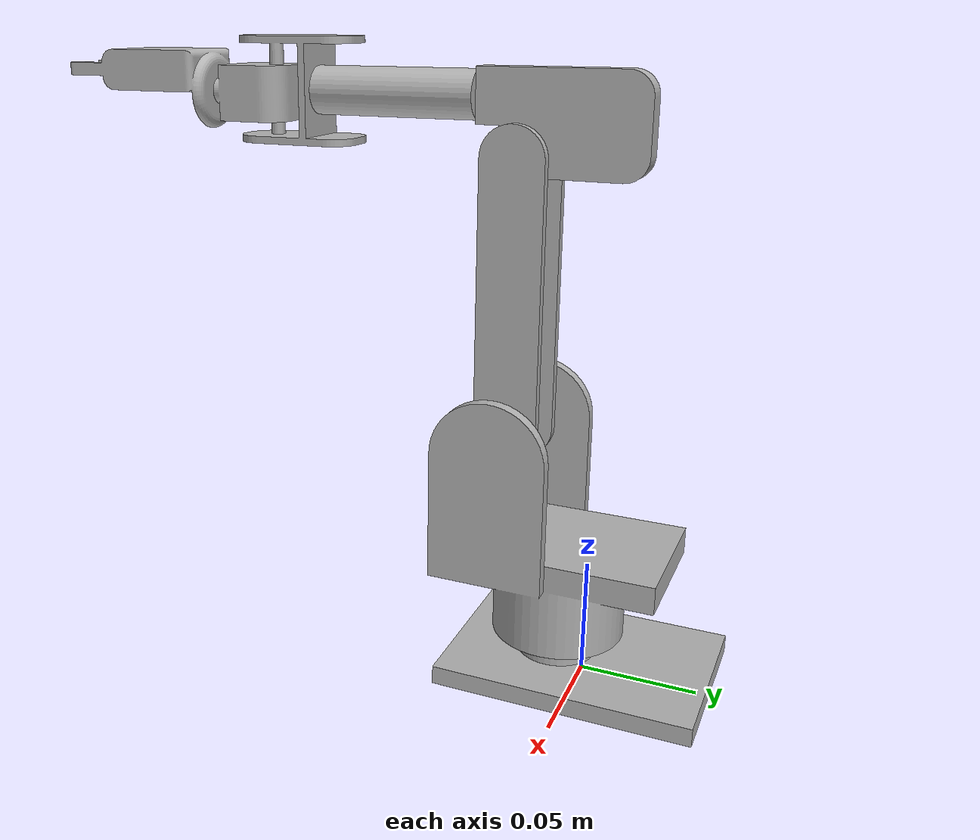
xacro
<?xml version="1.0" ?>
<robot name="sainsmart_arm_with_gripper" xmlns:xacro="http://www.ros.org/wiki/xacro">

<xacro:include filename="$(find sainsmart_arm_with_gripper_description)/urdf/materials.xacro" />
<xacro:include filename="$(find sainsmart_arm_with_gripper_description)/urdf/sainsmart_arm_with_gripper.trans" />
<xacro:include filename="$(find sainsmart_arm_with_gripper_description)/urdf/sainsmart_arm_with_gripper.gazebo" />
<link name="base_link">
  <inertial>
    <origin rpy="0 0 0" xyz="1.7636188208444524e-13 -0.0014557356335939994 0.005087271427580622"/>
    <mass value="0.621605611134476"/>
    <inertia ixx="0.000585" ixy="0.0" ixz="0.0" iyy="0.000295" iyz="7e-06" izz="0.000862"/>
  </inertial>
  <visual>
    <origin rpy="0 0 0" xyz="0 0 0"/>
    <geometry>
      <mesh filename="package://sainsmart_arm_with_gripper_description/meshes/base_link.stl" scale="0.001 0.001 0.001"/>
    </geometry>
    <material name="silver"/>
  </visual>
  <collision>
    <origin rpy="0 0 0" xyz="0 0 0"/>
    <geometry>
      <mesh filename="package://sainsmart_arm_with_gripper_description/meshes/base_link.stl" scale="0.001 0.001 0.001"/>
    </geometry>
  </collision>
</link>

<link name="base_cylinder_1_1">
  <inertial>
    <origin rpy="0 0 0" xyz="1.1874813777669709e-17 -0.005046544847183422 0.03537439948822327"/>
    <mass value="1.50308323620687"/>
    <inertia ixx="0.001583" ixy="0.0" ixz="0.0" iyy="0.001506" iyz="0.00026" izz="0.001385"/>
  </inertial>
  <visual>
    <origin rpy="0 0 0" xyz="-0.0 0.01205 -0.018"/>
    <geometry>
      <mesh filename="package://sainsmart_arm_with_gripper_description/meshes/base_cylinder_1_1.stl" scale="0.001 0.001 0.001"/>
    </geometry>
    <material name="silver"/>
  </visual>
  <collision>
    <origin rpy="0 0 0" xyz="-0.0 0.01205 -0.018"/>
    <geometry>
      <mesh filename="package://sainsmart_arm_with_gripper_description/meshes/base_cylinder_1_1.stl" scale="0.001 0.001 0.001"/>
    </geometry>
  </collision>
</link>

<link name="arm_shaft_2_1">
  <inertial>
    <origin rpy="0 0 0" xyz="0.0098 -3.2127078775090467e-15 0.060470481453181166"/>
    <mass value="0.2475707288367942"/>
    <inertia ixx="0.000422" ixy="0.0" ixz="-0.0" iyy="0.000442" iyz="0.0" izz="4.9e-05"/>
  </inertial>
  <visual>
    <origin rpy="0 0 0" xyz="0.01 0.035 -0.105"/>
    <geometry>
      <mesh filename="package://sainsmart_arm_with_gripper_description/meshes/arm_shaft_2_1.stl" scale="0.001 0.001 0.001"/>
    </geometry>
    <material name="silver"/>
  </visual>
  <collision>
    <origin rpy="0 0 0" xyz="0.01 0.035 -0.105"/>
    <geometry>
      <mesh filename="package://sainsmart_arm_with_gripper_description/meshes/arm_shaft_2_1.stl" scale="0.001 0.001 0.001"/>
    </geometry>
  </collision>
</link>

<link name="cross_link_1">
  <inertial>
    <origin rpy="0 0 0" xyz="0.005 0.01861888301361921 0.014257377630451373"/>
    <mass value="0.21614231595557873"/>
    <inertia ixx="0.000111" ixy="0.0" ixz="0.0" iyy="3.3e-05" iyz="6e-06" izz="8.2e-05"/>
  </inertial>
  <visual>
    <origin rpy="0 0 0" xyz="0.005 0.035 -0.223"/>
    <geometry>
      <mesh filename="package://sainsmart_arm_with_gripper_description/meshes/cross_link_1.stl" scale="0.001 0.001 0.001"/>
    </geometry>
    <material name="silver"/>
  </visual>
  <collision>
    <origin rpy="0 0 0" xyz="0.005 0.035 -0.223"/>
    <geometry>
      <mesh filename="package://sainsmart_arm_with_gripper_description/meshes/cross_link_1.stl" scale="0.001 0.001 0.001"/>
    </geometry>
  </collision>
</link>

<link name="cross_shaft_1">
  <inertial>
    <origin rpy="0 0 0" xyz="-1.2907265144586312e-05 -0.051581655577793824 2.7755575615628914e-17"/>
    <mass value="0.28363356011754126"/>
    <inertia ixx="0.000259" ixy="-0.0" ixz="0.0" iyy="4.8e-05" iyz="-0.0" izz="0.000232"/>
  </inertial>
  <visual>
    <origin rpy="0 0 0" xyz="-0.0 0.05375 -0.2463"/>
    <geometry>
      <mesh filename="package://sainsmart_arm_with_gripper_description/meshes/cross_shaft_1.stl" scale="0.001 0.001 0.001"/>
    </geometry>
    <material name="silver"/>
  </visual>
  <collision>
    <origin rpy="0 0 0" xyz="-0.0 0.05375 -0.2463"/>
    <geometry>
      <mesh filename="package://sainsmart_arm_with_gripper_description/meshes/cross_shaft_1.stl" scale="0.001 0.001 0.001"/>
    </geometry>
  </collision>
</link>

<link name="wrist_link_1">
  <inertial>
    <origin rpy="0 0 0" xyz="-0.0001299460047543682 -0.0075755816891169 -0.011649999999999938"/>
    <mass value="0.15171613937169018"/>
    <inertia ixx="1.8e-05" ixy="0.0" ixz="-0.0" iyy="1.7e-05" iyz="-0.0" izz="2.2e-05"/>
  </inertial>
  <visual>
    <origin rpy="0 0 0" xyz="-0.0 0.14675 -0.2563"/>
    <geometry>
      <mesh filename="package://sainsmart_arm_with_gripper_description/meshes/wrist_link_1.stl" scale="0.001 0.001 0.001"/>
    </geometry>
    <material name="silver"/>
  </visual>
  <collision>
    <origin rpy="0 0 0" xyz="-0.0 0.14675 -0.2563"/>
    <geometry>
      <mesh filename="package://sainsmart_arm_with_gripper_description/meshes/wrist_link_1.stl" scale="0.001 0.001 0.001"/>
    </geometry>
  </collision>
</link>

<link name="interface_1">
  <inertial>
    <origin rpy="0 0 0" xyz="0.00014381092522385786 -0.025400305179726024 0.007871788721431877"/>
    <mass value="0.23362237365301505"/>
    <inertia ixx="6.4e-05" ixy="2e-06" ixz="-0.0" iyy="2.9e-05" iyz="5e-06" izz="7.6e-05"/>
  </inertial>
  <visual>
    <origin rpy="0 0 0" xyz="-0.0 0.17585 -0.24465"/>
    <geometry>
      <mesh filename="package://sainsmart_arm_with_gripper_description/meshes/interface_1.stl" scale="0.001 0.001 0.001"/>
    </geometry>
    <material name="silver"/>
  </visual>
  <collision>
    <origin rpy="0 0 0" xyz="-0.0 0.17585 -0.24465"/>
    <geometry>
      <mesh filename="package://sainsmart_arm_with_gripper_description/meshes/interface_1.stl" scale="0.001 0.001 0.001"/>
    </geometry>
  </collision>
</link>

<link name="gripper_1">
  <inertial>
    <origin rpy="0 0 0" xyz="0.0010769528042624838 -0.01236164593154565 -0.0027499999999999747"/>
    <mass value="0.004449986091342143"/>
    <inertia ixx="0.0" ixy="0.0" ixz="0.0" iyy="0.0" iyz="-0.0" izz="0.0"/>
  </inertial>
  <visual>
    <origin rpy="0 0 0" xyz="0.01345 0.22685 -0.25615"/>
    <geometry>
      <mesh filename="package://sainsmart_arm_with_gripper_description/meshes/gripper_1.stl" scale="0.001 0.001 0.001"/>
    </geometry>
    <material name="silver"/>
  </visual>
  <collision>
    <origin rpy="0 0 0" xyz="0.01345 0.22685 -0.25615"/>
    <geometry>
      <mesh filename="package://sainsmart_arm_with_gripper_description/meshes/gripper_1.stl" scale="0.001 0.001 0.001"/>
    </geometry>
  </collision>
</link>

<joint name="rotate_base" type="continuous">
  <origin rpy="0 0 0" xyz="0.0 -0.01205 0.018"/>
  <parent link="base_link"/>
  <child link="base_cylinder_1_1"/>
  <axis xyz="0.0 0.0 1.0"/>
</joint>

<joint name="arm_shaft_joint_a" type="continuous">
  <origin rpy="0 0 0" xyz="-0.01 -0.02295 0.087"/>
  <parent link="base_cylinder_1_1"/>
  <child link="arm_shaft_2_1"/>
  <axis xyz="1.0 0.0 0.0"/>
</joint>

<joint name="arm_shaft_joint_b" type="continuous">
  <origin rpy="0 0 0" xyz="0.005 0.0 0.118"/>
  <parent link="arm_shaft_2_1"/>
  <child link="cross_link_1"/>
  <axis xyz="1.0 0.0 0.0"/>
</joint>

<joint name="cross_shaft_rotation" type="continuous">
  <origin rpy="0 0 0" xyz="0.005 -0.01875 0.0233"/>
  <parent link="cross_link_1"/>
  <child link="cross_shaft_1"/>
  <axis xyz="0.0 -1.0 0.0"/>
</joint>

<joint name="wrist_rotation" type="continuous">
  <origin rpy="0 0 0" xyz="0.0 -0.093 0.01"/>
  <parent link="cross_shaft_1"/>
  <child link="wrist_link_1"/>
  <axis xyz="0.0 0.0 -1.0"/>
</joint>

<joint name="interface_rotation" type="continuous">
  <origin rpy="0 0 0" xyz="0.0 -0.0291 -0.01165"/>
  <parent link="wrist_link_1"/>
  <child link="interface_1"/>
  <axis xyz="0.0 -1.0 0.0"/>
</joint>

<joint name="gripper_slider" type="prismatic">
  <origin rpy="0 0 0" xyz="-0.01345 -0.051 0.0115"/>
  <parent link="interface_1"/>
  <child link="gripper_1"/>
  <axis xyz="1.0 0.0 0.0"/>
  <limit effort="100" lower="0.0" upper="0.01" velocity="100"/>
</joint>

</robot>

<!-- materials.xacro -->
<robot name="sainsmart_arm_with_gripper" xmlns:xacro="http://www.ros.org/wiki/xacro" >

<material name="silver">
  <color rgba="0.700 0.700 0.700 1.000"/>
</material>

</robot>

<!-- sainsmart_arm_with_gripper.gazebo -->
<robot name="sainsmart_arm_with_gripper" xmlns:xacro="http://www.ros.org/wiki/xacro" >

<xacro:property name="body_color" value="Gazebo/Silver" />

<gazebo>
  <plugin filename="libgazebo_ros_control.so" name="control"/>
</gazebo>
<gazebo reference="base_link">
  <material>${body_color}</material>
  <mu1>0.2</mu1>
  <mu2>0.2</mu2>
  <selfCollide>true</selfCollide>
  <gravity>true</gravity>
</gazebo>

<gazebo reference="base_cylinder_1_1">
  <material>${body_color}</material>
  <mu1>0.2</mu1>
  <mu2>0.2</mu2>
  <selfCollide>true</selfCollide>
</gazebo>

<gazebo reference="arm_shaft_2_1">
  <material>${body_color}</material>
  <mu1>0.2</mu1>
  <mu2>0.2</mu2>
  <selfCollide>true</selfCollide>
</gazebo>

<gazebo reference="cross_link_1">
  <material>${body_color}</material>
  <mu1>0.2</mu1>
  <mu2>0.2</mu2>
  <selfCollide>true</selfCollide>
</gazebo>

<gazebo reference="cross_shaft_1">
  <material>${body_color}</material>
  <mu1>0.2</mu1>
  <mu2>0.2</mu2>
  <selfCollide>true</selfCollide>
</gazebo>

<gazebo reference="wrist_link_1">
  <material>${body_color}</material>
  <mu1>0.2</mu1>
  <mu2>0.2</mu2>
  <selfCollide>true</selfCollide>
</gazebo>

<gazebo reference="interface_1">
  <material>${body_color}</material>
  <mu1>0.2</mu1>
  <mu2>0.2</mu2>
  <selfCollide>true</selfCollide>
</gazebo>

<gazebo reference="gripper_1">
  <material>${body_color}</material>
  <mu1>0.2</mu1>
  <mu2>0.2</mu2>
  <selfCollide>true</selfCollide>
</gazebo>

</robot>
